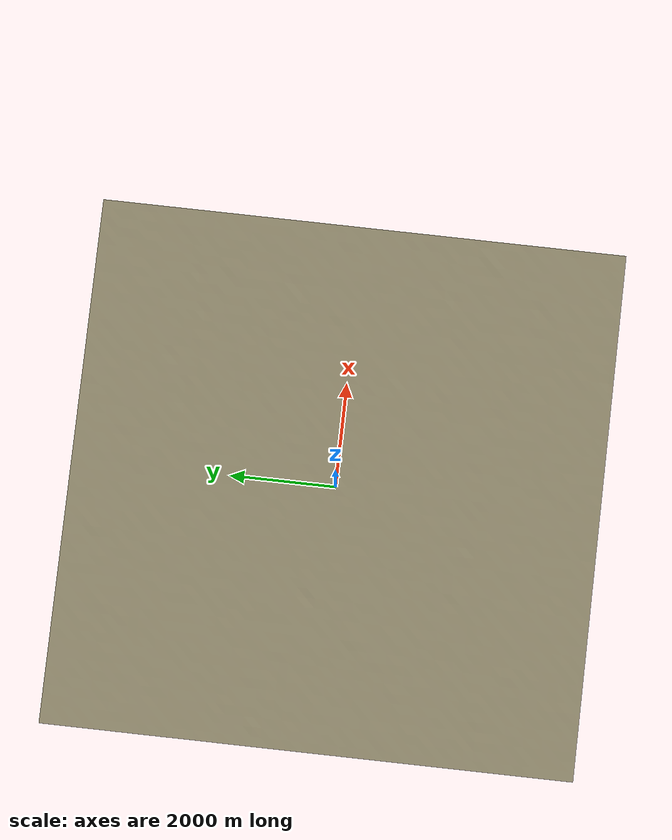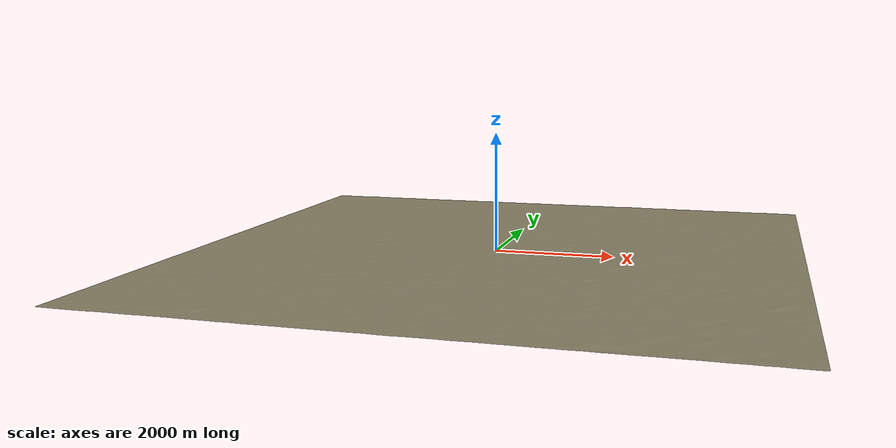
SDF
<?xml version="1.0" ?>
<sdf version="1.9">
  <model name="sr75_terrain_10km">
    <static>true</static>
    <link name="terrain_link">
      <visual name="terrain_visual">
        <cast_shadows>false</cast_shadows>
        <geometry>
          <mesh>
            <uri>model://sr75_terrain_10km/meshes/sr75_terrain_10km.obj</uri>
            <scale>1 1 1</scale>
          </mesh>
        </geometry>
        <material>
          <ambient>0.45 0.42 0.34 1</ambient>
          <diffuse>0.55 0.52 0.41 1</diffuse>
          <specular>0.05 0.05 0.05 1</specular>
        </material>
      </visual>
    </link>
  </model>
</sdf>
